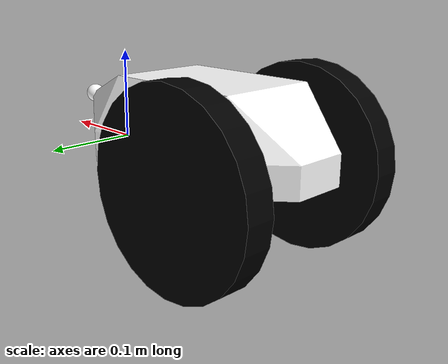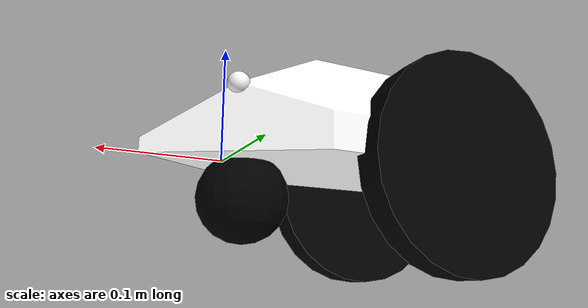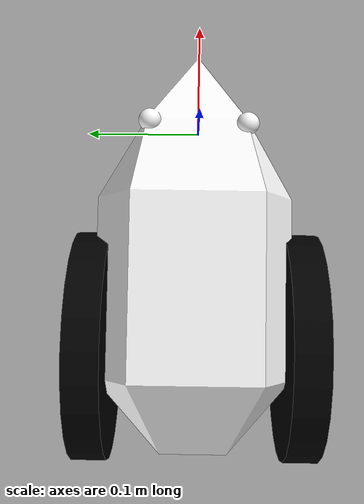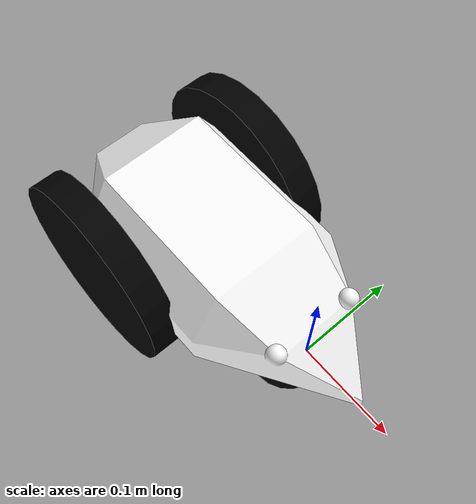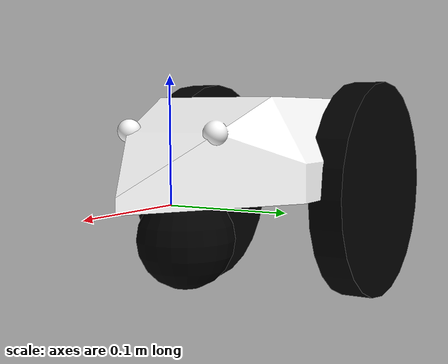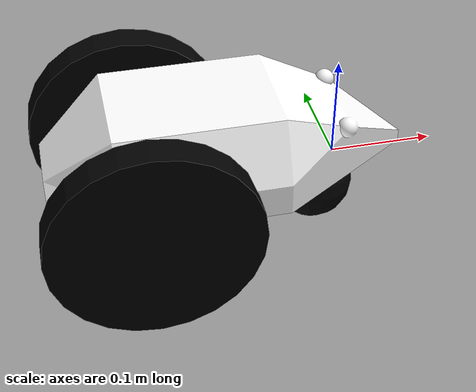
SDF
<?xml version="1.0" ?>
<sdf version="1.7">
    <model name='generic_robot' canonical_link='chassis'>

        <frame name="lidar_frame" attached_to='chassis'>
            <pose>0.8 0 0.5 0 0 0</pose>
        </frame>

        <!--chassis-->
        <link name="chassis">
        <pose>0 0 0 0 0 1.57</pose>

        <!-- Visual Geometry -->
        <visual name="act_visual">
            <geometry>
            <mesh>
                <uri>model://mouse_robot/mouse_robot.stl</uri>
                <scale>0.015 0.015 0.015</scale>
            </mesh>
            </geometry>
            <material>
                <ambient>1 1 1 1</ambient>
                <diffuse>1 1 1 1</diffuse>
                <specular>0.8 0.8 0.8 1</specular>
            </material>
        </visual>

        <!-- Collision Geometry -->
        <collision name="chassis_collision">
            <geometry>
            <box>
                <size>0.4 0.2 0.1</size>
            </box>
            </geometry>
        </collision>

        <!-- Inertial Properties -->
        <inertial>
            <mass>1.5</mass>
            <inertia>
            <ixx>0.095</ixx>
            <iyy>0.381</iyy>
            <izz>0.476</izz>
            </inertia>
        </inertial>

        <!-- LiDAR Sensor -->
        <sensor type="ray" name="lidar_sensor">
            <pose>0 0 0.3 0 0 0</pose>
            <topic>lidar</topic>
            <update_rate>10</update_rate>
            <ray>
                <scan>
                    <horizontal>
                        <samples>640</samples>
                        <resolution>1</resolution>
                        <min_angle>-1.396263</min_angle>
                        <max_angle>1.396263</max_angle>
                    </horizontal>
                    <vertical>
                        <samples>20</samples> <!-- Number of vertical beams -->
                        <resolution>1</resolution>
                        <min_angle>0</min_angle> <!-- Horizontal direction -->
                        <max_angle>1.5708</max_angle> <!-- 90° upward -->
                    </vertical>
                </scan>
                <range>
                    <min>0.08</min>
                    <max>10.0</max>
                    <resolution>0.01</resolution>
                </range>
            </ray>
            <plugin name="gazebo_ros_ray_sensor" filename="libgazebo_ros_ray_sensor.so">
                <topic_name>lidar</topic_name>
                <output_type>sensor_msgs/LaserScan</output_type>
                <min_angle>-1.57</min_angle>  <!-- 90 degrees left -->
                <max_angle>1.57</max_angle>   <!-- 90 degrees right -->
                <update_rate>30.0</update_rate>
                <ray_count>360</ray_count>    <!-- Resolution -->
                <range_min>0.1</range_min>
                <range_max>10.0</range_max>
            </plugin>
        </sensor>
        </link>

        <!-- Left wheel-->
        <link name='left_wheel'>
            <pose relative_to="chassis">0.09 0.19 0 -1.5707 0 1.57</pose>
            <inertial>
                <mass>1</mass>
                <inertia>
                    <ixx>0.043333</ixx>
                    <ixy>0</ixy>
                    <ixz>0</ixz>
                    <iyy>0.043333</iyy>
                    <iyz>0</iyz>
                    <izz>0.08</izz>
                </inertia>
            </inertial>
            <visual name='left_wheel_visual'>
                <geometry>
                    <cylinder>
                        <radius>0.1</radius>
                        <length>0.03</length>
                    </cylinder>
                </geometry>
                <material>
                    <ambient>0 0 0 1</ambient>
                    <diffuse>0 0 0 1</diffuse>
                    <specular>0.1 0.1 0.1 1</specular>
                </material>
            </visual>
            <collision name='left_wheel_collision'>
                <geometry>
                    <cylinder>
                        <radius>0.1</radius>
                        <length>0.03</length>
                    </cylinder>
                </geometry>
            </collision>
        </link>

        <!--The same as left wheel but with different position-->
        <link name='right_wheel'>
            <pose relative_to="chassis">-0.09 0.19 0 -1.5707 0 1.57</pose>
            <inertial>
                <mass>1</mass>
                <inertia>
                    <ixx>0.043333</ixx>
                    <ixy>0</ixy>
                    <ixz>0</ixz>
                    <iyy>0.043333</iyy>
                    <iyz>0</iyz>
                    <izz>0.08</izz>
                </inertia>
            </inertial>
            <visual name='right_wheel_visual'>
                <geometry>
                    <cylinder>
                        <radius>0.1</radius>
                        <length>0.03</length>
                    </cylinder>
                </geometry>
                <material>
                    <ambient>0 0 0 1</ambient>
                    <diffuse>0 0 0 1</diffuse>
                    <specular>0.1 0.1 0.1 1</specular>
                </material>
            </visual>
            <collision name='right_wheel_collision'>
                <geometry>
                    <cylinder>
                        <radius>0.1</radius>
                        <length>0.03</length>
                    </cylinder>
                </geometry>
            </collision>
        </link>

        <frame name="caster_frame" attached_to='chassis'>
            <pose relative_to="chassis">0 0.02 -0.03 0 0 0</pose>
        </frame>

        <link name='caster'>
            <pose relative_to='caster_frame'>0 0 0 0 0 0</pose>
            <inertial>
                <mass>1</mass>
                <inertia>
                    <ixx>0.016</ixx>
                    <ixy>0</ixy>
                    <ixz>0</ixz>
                    <iyy>0.016</iyy>
                    <iyz>0</iyz>
                    <izz>0.016</izz>
                </inertia>
            </inertial>
            <visual name='caster_visual'>
                <geometry>
                    <sphere>
                        <radius>0.04</radius>
                    </sphere>
                </geometry>
                <material>
                    <ambient>0 0 0 1</ambient>
                    <diffuse>0 0 0 1</diffuse>
                    <specular>0.1 0.1 0.1 1</specular>
                </material>
            </visual>
            <collision name='caster_collision'>
                <geometry>
                    <sphere>
                        <radius>0.04</radius>
                    </sphere>
                </geometry>
            </collision>
        </link>

        <!--left wheel joint-->
        <joint name='left_wheel_joint' type='revolute'>
            <pose relative_to='left_wheel'/>
            <parent>chassis</parent>
            <child>left_wheel</child>
            <axis>
                <xyz expressed_in='__model__'>0 1 0</xyz> <!--can be descired to any frame or even arbitrary frames-->
                <limit>
                    <lower>-1.79769e+308</lower>    <!--negative infinity-->
                    <upper>1.79769e+308</upper>     <!--positive infinity-->
                </limit>
            </axis>
        </joint>

        <!--right wheel joint-->
        <joint name='right_wheel_joint' type='revolute'>
            <pose relative_to='right_wheel'/>
            <parent>chassis</parent>
            <child>right_wheel</child>
            <axis>
                <xyz expressed_in='__model__'>0 1 0</xyz>
                <limit>
                    <lower>-1.79769e+308</lower>    <!--negative infinity-->
                    <upper>1.79769e+308</upper>     <!--positive infinity-->
                </limit>
            </axis>
        </joint>

        <!--caster wheel joint--> <!--pose defult value is the child-->
        <joint name='caster_wheel' type='ball'>
            <parent>chassis</parent>
            <child>caster</child>
        </joint>

        <plugin name="diff_drive_controller" filename="libgazebo_ros_diff_drive.so">
            <left_joint>left_wheel_joint</left_joint>
            <right_joint>right_wheel_joint</right_joint>
            <wheel_separation>0.19</wheel_separation>
            <wheel_radius>0.05</wheel_radius>
            <wheel_diameter>0.1</wheel_diameter>
            <odom_publish_frequency>10</odom_publish_frequency>
            <topic>cmd_vel</topic>
        </plugin>
    </model>
</sdf>
